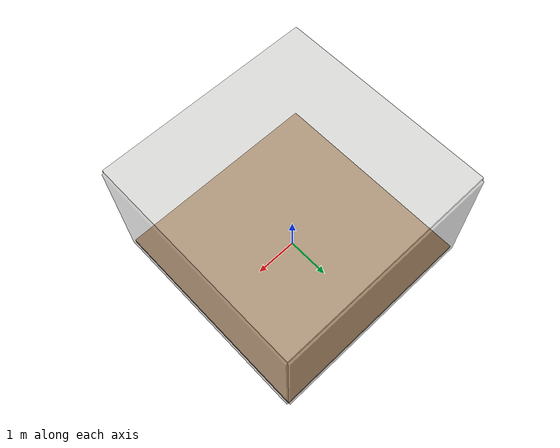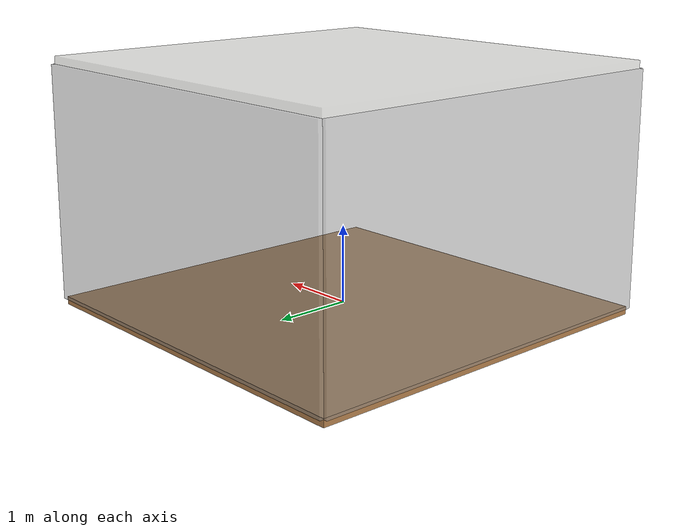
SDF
<?xml version='1.0'?>
<sdf version='1.6'>
  <model name='Moca'>
    <link name='floor'>
      <inertial>
        <mass>0.46618</mass>
        <inertia>
          <ixx>0.296123</ixx>
          <ixy>0</ixy>
          <ixz>0</ixz>
          <iyy>0.498918</iyy>
          <iyz>0</iyz>
          <izz>0.794866</izz>
        </inertia>
        <pose frame=''>0 0 0 0 -0 0</pose>
      </inertial>
      <pose frame=''>0 0 -0.04 0 -0 0</pose>
      <gravity>1</gravity>
      <self_collide>0</self_collide>
      <kinematic>0</kinematic>
      <enable_wind>0</enable_wind>
      <visual name='visual'>
        <pose frame=''>0 0 0 0 -0 0</pose>
        <geometry>
          <box>
            <size>5 5 0.1</size>
          </box>
        </geometry>
        <material>
          <lighting>1</lighting>
          <script>
            <uri>file://media/materials/scripts/gazebo.material</uri>
            <name>Gazebo/WoodFloor</name>
          </script>
          <shader type='pixel'>
            <normal_map>__default__</normal_map>
          </shader>
          <ambient>0.3 0.3 0.3 1</ambient>
          <diffuse>0.7 0.7 0.7 1</diffuse>
          <specular>0.01 0.01 0.01 1</specular>
          <emissive>0 0 0 1</emissive>
        </material>
        <transparency>0</transparency>
        <cast_shadows>1</cast_shadows>
      </visual>
      <collision name='collision'>
        <laser_retro>0</laser_retro>
        <max_contacts>10</max_contacts>
        <pose frame=''>0 0 0 0 -0 0</pose>
        <geometry>
          <box>
            <size>5 5 0.1</size>
          </box>
        </geometry>
        <surface>
          <friction>
            <ode>
              <mu>1</mu>
              <mu2>1</mu2>
              <fdir1>0 0 0</fdir1>
              <slip1>0</slip1>
              <slip2>0</slip2>
            </ode>
            <torsional>
              <coefficient>1</coefficient>
              <patch_radius>0</patch_radius>
              <surface_radius>0</surface_radius>
              <use_patch_radius>1</use_patch_radius>
              <ode>
                <slip>0</slip>
              </ode>
            </torsional>
          </friction>
          <bounce>
            <restitution_coefficient>0</restitution_coefficient>
            <threshold>1e+06</threshold>
          </bounce>
          <contact>
            <collide_without_contact>0</collide_without_contact>
            <collide_without_contact_bitmask>1</collide_without_contact_bitmask>
            <collide_bitmask>1</collide_bitmask>
            <ode>
              <soft_cfm>0</soft_cfm>
              <soft_erp>0.2</soft_erp>
              <kp>1e+13</kp>
              <kd>1</kd>
              <max_vel>0.01</max_vel>
              <min_depth>0</min_depth>
            </ode>
            <bullet>
              <split_impulse>1</split_impulse>
              <split_impulse_penetration_threshold>-0.01</split_impulse_penetration_threshold>
              <soft_cfm>0</soft_cfm>
              <soft_erp>0.2</soft_erp>
              <kp>1e+13</kp>
              <kd>1</kd>
            </bullet>
          </contact>
        </surface>
      </collision>
    </link>
    <link name='ceil'>
      <inertial>
        <mass>0.46618</mass>
        <inertia>
          <ixx>0.296123</ixx>
          <ixy>0</ixy>
          <ixz>0</ixz>
          <iyy>0.498918</iyy>
          <iyz>0</iyz>
          <izz>0.794866</izz>
        </inertia>
        <pose frame=''>0 0 0 0 -0 0</pose>
      </inertial>
      <pose frame=''>0 0 3.05 0 -0 0</pose>
      <gravity>1</gravity>
      <self_collide>0</self_collide>
      <kinematic>0</kinematic>
      <enable_wind>0</enable_wind>
      <visual name='visual'>
        <pose frame=''>0 0 0 0 -0 0</pose>
        <geometry>
          <box>
            <size>5 5 0.1</size>
          </box>
        </geometry>
        <material>
          <lighting>1</lighting>
          <script>
            <uri>file://media/materials/scripts/gazebo.material</uri>
            <name>Gazebo/CeilingTiled</name>
          </script>
          <shader type='pixel'>
            <normal_map>__default__</normal_map>
          </shader>
          <ambient>0.3 0.3 0.3 1</ambient>
          <diffuse>0.7 0.7 0.7 1</diffuse>
          <specular>0.01 0.01 0.01 1</specular>
          <emissive>0 0 0 1</emissive>
        </material>
        <transparency>0.5</transparency>
        <cast_shadows>1</cast_shadows>
      </visual>
      <collision name='collision'>
        <laser_retro>0</laser_retro>
        <max_contacts>10</max_contacts>
        <pose frame=''>0 0 0 0 -0 0</pose>
        <geometry>
          <box>
            <size>5 5 0.1</size>
          </box>
        </geometry>
        <surface>
          <friction>
            <ode>
              <mu>1</mu>
              <mu2>1</mu2>
              <fdir1>0 0 0</fdir1>
              <slip1>0</slip1>
              <slip2>0</slip2>
            </ode>
            <torsional>
              <coefficient>1</coefficient>
              <patch_radius>0</patch_radius>
              <surface_radius>0</surface_radius>
              <use_patch_radius>1</use_patch_radius>
              <ode>
                <slip>0</slip>
              </ode>
            </torsional>
          </friction>
          <bounce>
            <restitution_coefficient>0</restitution_coefficient>
            <threshold>1e+06</threshold>
          </bounce>
          <contact>
            <collide_without_contact>0</collide_without_contact>
            <collide_without_contact_bitmask>1</collide_without_contact_bitmask>
            <collide_bitmask>1</collide_bitmask>
            <ode>
              <soft_cfm>0</soft_cfm>
              <soft_erp>0.2</soft_erp>
              <kp>1e+13</kp>
              <kd>1</kd>
              <max_vel>0.01</max_vel>
              <min_depth>0</min_depth>
            </ode>
            <bullet>
              <split_impulse>1</split_impulse>
              <split_impulse_penetration_threshold>-0.01</split_impulse_penetration_threshold>
              <soft_cfm>0</soft_cfm>
              <soft_erp>0.2</soft_erp>
              <kp>1e+13</kp>
              <kd>1</kd>
            </bullet>
          </contact>
        </surface>
      </collision>
    </link>
    <link name='wall_1'>
      <inertial>
        <mass>0.672893</mass>
        <inertia>
          <ixx>0.056896</ixx>
          <ixy>0</ixy>
          <ixz>0</ixz>
          <iyy>1.789</iyy>
          <iyz>0</iyz>
          <izz>1.73375</izz>
        </inertia>
        <pose frame=''>0 0 0 0 -0 0</pose>
      </inertial>
      <pose frame=''>0 -2.5 1.5 0 -0 0</pose>
      <gravity>1</gravity>
      <self_collide>0</self_collide>
      <kinematic>0</kinematic>
      <enable_wind>0</enable_wind>
      <visual name='visual'>
        <pose frame=''>0 0 0 0 -0 0</pose>
        <geometry>
          <box>
            <size>5 0.1 3</size>
          </box>
        </geometry>
        <material>
          <lighting>1</lighting>
          <script>
            <uri>file://media/materials/scripts/gazebo.material</uri>
            <name>Gazebo/GreyTransparent</name>
          </script>
          <shader type='pixel'>
            <normal_map>__default__</normal_map>
          </shader>
          <ambient>0.3 0.3 0.3 1</ambient>
          <diffuse>0.7 0.7 0.7 1</diffuse>
          <specular>0.01 0.01 0.01 1</specular>
          <emissive>0 0 0 1</emissive>
        </material>
        <transparency>0.5</transparency>
        <cast_shadows>1</cast_shadows>
      </visual>
      <collision name='collision'>
        <laser_retro>0</laser_retro>
        <max_contacts>10</max_contacts>
        <pose frame=''>0 0 0 0 -0 0</pose>
        <geometry>
          <box>
            <size>5 0.1 3</size>
          </box>
        </geometry>
        <surface>
          <friction>
            <ode>
              <mu>1</mu>
              <mu2>1</mu2>
              <fdir1>0 0 0</fdir1>
              <slip1>0</slip1>
              <slip2>0</slip2>
            </ode>
            <torsional>
              <coefficient>1</coefficient>
              <patch_radius>0</patch_radius>
              <surface_radius>0</surface_radius>
              <use_patch_radius>1</use_patch_radius>
              <ode>
                <slip>0</slip>
              </ode>
            </torsional>
          </friction>
          <bounce>
            <restitution_coefficient>0</restitution_coefficient>
            <threshold>1e+06</threshold>
          </bounce>
          <contact>
            <collide_without_contact>0</collide_without_contact>
            <collide_without_contact_bitmask>1</collide_without_contact_bitmask>
            <collide_bitmask>1</collide_bitmask>
            <ode>
              <soft_cfm>0</soft_cfm>
              <soft_erp>0.2</soft_erp>
              <kp>1e+13</kp>
              <kd>1</kd>
              <max_vel>0.01</max_vel>
              <min_depth>0</min_depth>
            </ode>
            <bullet>
              <split_impulse>1</split_impulse>
              <split_impulse_penetration_threshold>-0.01</split_impulse_penetration_threshold>
              <soft_cfm>0</soft_cfm>
              <soft_erp>0.2</soft_erp>
              <kp>1e+13</kp>
              <kd>1</kd>
            </bullet>
          </contact>
        </surface>
      </collision>
    </link>
    <link name='wall_2'>
      <inertial>
        <mass>0.672893</mass>
        <inertia>
          <ixx>0.056896</ixx>
          <ixy>0</ixy>
          <ixz>0</ixz>
          <iyy>1.789</iyy>
          <iyz>0</iyz>
          <izz>1.73375</izz>
        </inertia>
        <pose frame=''>0 0 0 0 -0 0</pose>
      </inertial>
      <pose frame=''>0 2.5 1.5 0 -0 0</pose>
      <gravity>1</gravity>
      <self_collide>0</self_collide>
      <kinematic>0</kinematic>
      <enable_wind>0</enable_wind>
      <visual name='visual'>
        <pose frame=''>0 0 0 0 -0 0</pose>
        <geometry>
          <box>
            <size>5 0.1 3</size>
          </box>
        </geometry>
        <material>
          <lighting>1</lighting>
          <script>
            <uri>file://media/materials/scripts/gazebo.material</uri>
            <name>Gazebo/GreyTransparent</name>
          </script>
          <shader type='pixel'>
            <normal_map>__default__</normal_map>
          </shader>
          <ambient>0.3 0.3 0.3 1</ambient>
          <diffuse>0.7 0.7 0.7 1</diffuse>
          <specular>0.01 0.01 0.01 1</specular>
          <emissive>0 0 0 1</emissive>
        </material>
        <transparency>0.5</transparency>
        <cast_shadows>1</cast_shadows>
      </visual>
      <collision name='collision'>
        <laser_retro>0</laser_retro>
        <max_contacts>10</max_contacts>
        <pose frame=''>0 0 0 0 -0 0</pose>
        <geometry>
          <box>
            <size>5 0.1 3</size>
          </box>
        </geometry>
        <surface>
          <friction>
            <ode>
              <mu>1</mu>
              <mu2>1</mu2>
              <fdir1>0 0 0</fdir1>
              <slip1>0</slip1>
              <slip2>0</slip2>
            </ode>
            <torsional>
              <coefficient>1</coefficient>
              <patch_radius>0</patch_radius>
              <surface_radius>0</surface_radius>
              <use_patch_radius>1</use_patch_radius>
              <ode>
                <slip>0</slip>
              </ode>
            </torsional>
          </friction>
          <bounce>
            <restitution_coefficient>0</restitution_coefficient>
            <threshold>1e+06</threshold>
          </bounce>
          <contact>
            <collide_without_contact>0</collide_without_contact>
            <collide_without_contact_bitmask>1</collide_without_contact_bitmask>
            <collide_bitmask>1</collide_bitmask>
            <ode>
              <soft_cfm>0</soft_cfm>
              <soft_erp>0.2</soft_erp>
              <kp>1e+13</kp>
              <kd>1</kd>
              <max_vel>0.01</max_vel>
              <min_depth>0</min_depth>
            </ode>
            <bullet>
              <split_impulse>1</split_impulse>
              <split_impulse_penetration_threshold>-0.01</split_impulse_penetration_threshold>
              <soft_cfm>0</soft_cfm>
              <soft_erp>0.2</soft_erp>
              <kp>1e+13</kp>
              <kd>1</kd>
            </bullet>
          </contact>
        </surface>
      </collision>
    </link>
    <link name='wall_3'>
      <inertial>
        <mass>0.672893</mass>
        <inertia>
          <ixx>0.056896</ixx>
          <ixy>0</ixy>
          <ixz>0</ixz>
          <iyy>1.789</iyy>
          <iyz>0</iyz>
          <izz>1.73375</izz>
        </inertia>
        <pose frame=''>0 0 0 0 -0 1.57</pose>
      </inertial>
      <pose frame=''>-2.5 0 1.5 0 -0 1.5708</pose>
      <gravity>1</gravity>
      <self_collide>0</self_collide>
      <kinematic>0</kinematic>
      <enable_wind>0</enable_wind>
      <visual name='visual'>
        <pose frame=''>0 0 0 0 -0 0</pose>
        <geometry>
          <box>
            <size>5 0.1 3</size>
          </box>
        </geometry>
        <material>
          <lighting>1</lighting>
          <script>
            <uri>file://media/materials/scripts/gazebo.material</uri>
            <name>Gazebo/GreyTransparent</name>
          </script>
          <shader type='pixel'>
            <normal_map>__default__</normal_map>
          </shader>
          <ambient>0.3 0.3 0.3 1</ambient>
          <diffuse>0.7 0.7 0.7 1</diffuse>
          <specular>0.01 0.01 0.01 1</specular>
          <emissive>0 0 0 1</emissive>
        </material>
        <transparency>0.5</transparency>
        <cast_shadows>1</cast_shadows>
      </visual>
      <collision name='collision'>
        <laser_retro>0</laser_retro>
        <max_contacts>10</max_contacts>
        <pose frame=''>0 0 0 0 -0 0</pose>
        <geometry>
          <box>
            <size>5 0.1 3</size>
          </box>
        </geometry>
        <surface>
          <friction>
            <ode>
              <mu>1</mu>
              <mu2>1</mu2>
              <fdir1>0 0 0</fdir1>
              <slip1>0</slip1>
              <slip2>0</slip2>
            </ode>
            <torsional>
              <coefficient>1</coefficient>
              <patch_radius>0</patch_radius>
              <surface_radius>0</surface_radius>
              <use_patch_radius>1</use_patch_radius>
              <ode>
                <slip>0</slip>
              </ode>
            </torsional>
          </friction>
          <bounce>
            <restitution_coefficient>0</restitution_coefficient>
            <threshold>1e+06</threshold>
          </bounce>
          <contact>
            <collide_without_contact>0</collide_without_contact>
            <collide_without_contact_bitmask>1</collide_without_contact_bitmask>
            <collide_bitmask>1</collide_bitmask>
            <ode>
              <soft_cfm>0</soft_cfm>
              <soft_erp>0.2</soft_erp>
              <kp>1e+13</kp>
              <kd>1</kd>
              <max_vel>0.01</max_vel>
              <min_depth>0</min_depth>
            </ode>
            <bullet>
              <split_impulse>1</split_impulse>
              <split_impulse_penetration_threshold>-0.01</split_impulse_penetration_threshold>
              <soft_cfm>0</soft_cfm>
              <soft_erp>0.2</soft_erp>
              <kp>1e+13</kp>
              <kd>1</kd>
            </bullet>
          </contact>
        </surface>
      </collision>
    </link>
    <link name='wall_4'>
      <inertial>
        <mass>0.672893</mass>
        <inertia>
          <ixx>0.056896</ixx>
          <ixy>0</ixy>
          <ixz>0</ixz>
          <iyy>1.789</iyy>
          <iyz>0</iyz>
          <izz>1.73375</izz>
        </inertia>
        <pose frame=''>0 0 0 0 -0 1.57</pose>
      </inertial>
      <pose frame=''>2.5 0 1.5 0 -0 1.5708</pose>
      <gravity>1</gravity>
      <self_collide>0</self_collide>
      <kinematic>0</kinematic>
      <enable_wind>0</enable_wind>
      <visual name='visual'>
        <pose frame=''>0 0 0 0 -0 0</pose>
        <geometry>
          <box>
            <size>5 0.1 3</size>
          </box>
        </geometry>
        <material>
          <lighting>1</lighting>
          <script>
            <uri>file://media/materials/scripts/gazebo.material</uri>
            <name>Gazebo/GreyTransparent</name>
          </script>
          <shader type='pixel'>
            <normal_map>__default__</normal_map>
          </shader>
          <ambient>0.3 0.3 0.3 1</ambient>
          <diffuse>0.7 0.7 0.7 1</diffuse>
          <specular>0.01 0.01 0.01 1</specular>
          <emissive>0 0 0 1</emissive>
        </material>
        <transparency>0.5</transparency>
        <cast_shadows>1</cast_shadows>
      </visual>
      <collision name='collision'>
        <laser_retro>0</laser_retro>
        <max_contacts>10</max_contacts>
        <pose frame=''>0 0 0 0 -0 0</pose>
        <geometry>
          <box>
            <size>5 0.1 3</size>
          </box>
        </geometry>
        <surface>
          <friction>
            <ode>
              <mu>1</mu>
              <mu2>1</mu2>
              <fdir1>0 0 0</fdir1>
              <slip1>0</slip1>
              <slip2>0</slip2>
            </ode>
            <torsional>
              <coefficient>1</coefficient>
              <patch_radius>0</patch_radius>
              <surface_radius>0</surface_radius>
              <use_patch_radius>1</use_patch_radius>
              <ode>
                <slip>0</slip>
              </ode>
            </torsional>
          </friction>
          <bounce>
            <restitution_coefficient>0</restitution_coefficient>
            <threshold>1e+06</threshold>
          </bounce>
          <contact>
            <collide_without_contact>0</collide_without_contact>
            <collide_without_contact_bitmask>1</collide_without_contact_bitmask>
            <collide_bitmask>1</collide_bitmask>
            <ode>
              <soft_cfm>0</soft_cfm>
              <soft_erp>0.2</soft_erp>
              <kp>1e+13</kp>
              <kd>1</kd>
              <max_vel>0.01</max_vel>
              <min_depth>0</min_depth>
            </ode>
            <bullet>
              <split_impulse>1</split_impulse>
              <split_impulse_penetration_threshold>-0.01</split_impulse_penetration_threshold>
              <soft_cfm>0</soft_cfm>
              <soft_erp>0.2</soft_erp>
              <kp>1e+13</kp>
              <kd>1</kd>
            </bullet>
          </contact>
        </surface>
      </collision>
    </link>
    <static>1</static>
    <allow_auto_disable>1</allow_auto_disable>
  </model>
</sdf>
